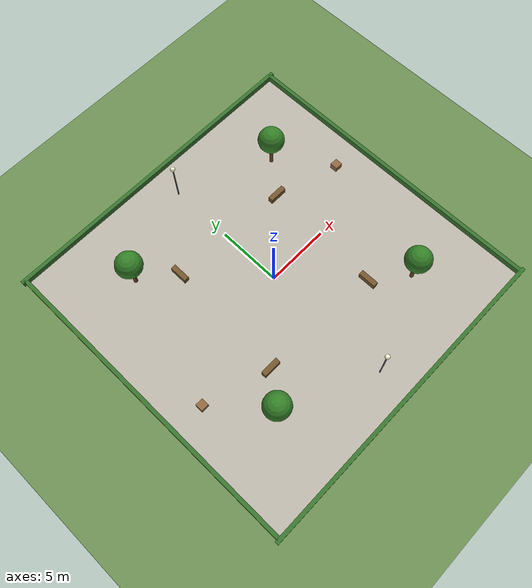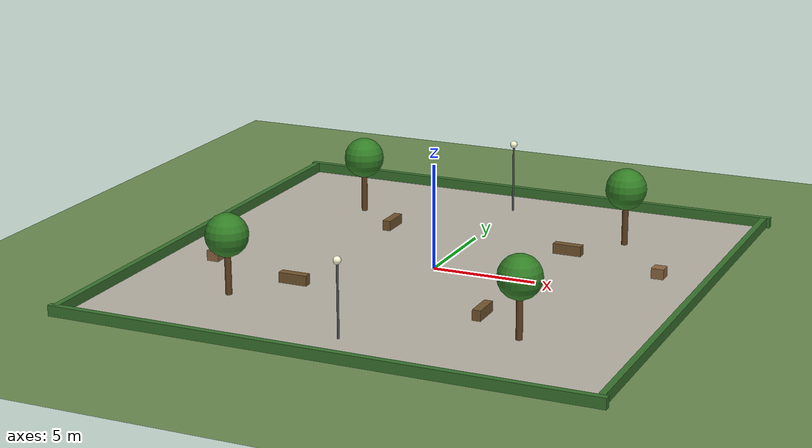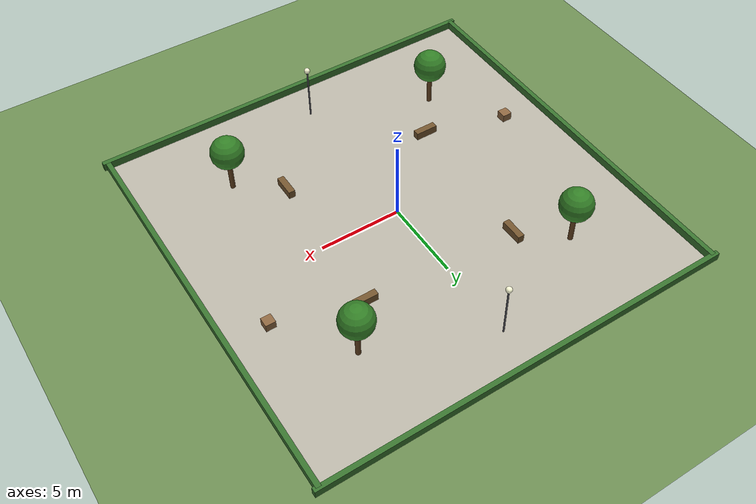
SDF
<?xml version="1.0"?>
<sdf version="1.11">
  <world name="outdoor_courtyard">

    <!-- ── Physics ─────────────────────────────────────────────────────── -->
    <physics name="1ms" type="ignored">
      <max_step_size>0.001</max_step_size>
      <real_time_factor>1.0</real_time_factor>
    </physics>

    <!-- ── System plugins ──────────────────────────────────────────────── -->
    <plugin filename="gz-sim-physics-system"
            name="gz::sim::systems::Physics"/>
    <plugin filename="gz-sim-sensors-system"
            name="gz::sim::systems::Sensors">
      <render_engine>ogre2</render_engine>
    </plugin>
    <plugin filename="gz-sim-scene-broadcaster-system"
            name="gz::sim::systems::SceneBroadcaster"/>
    <plugin filename="gz-sim-user-commands-system"
            name="gz::sim::systems::UserCommands"/>
    <plugin filename="gz-sim-imu-system"
            name="gz::sim::systems::Imu"/>

    <!-- ── Outdoor lighting ─────────────────────────────────────────────── -->
    <!-- Primary sun — high noon angle -->
    <light name="sun" type="directional">
      <cast_shadows>true</cast_shadows>
      <pose>0 0 30 0 0 0</pose>
      <diffuse>1.0 0.97 0.90 1</diffuse>
      <specular>0.4 0.4 0.35 1</specular>
      <direction>-0.3 -0.5 -0.82</direction>
    </light>
    <!-- Sky fill light (simulate scattered sky) -->
    <light name="sky_fill" type="directional">
      <cast_shadows>false</cast_shadows>
      <pose>0 0 20 0 0 0</pose>
      <diffuse>0.45 0.50 0.65 1</diffuse>
      <specular>0.0 0.0 0.0 1</specular>
      <direction>0 0 -1</direction>
    </light>

    <!-- ── Ground ──────────────────────────────────────────────────────── -->
    <model name="ground_plane">
      <static>true</static>
      <link name="link">
        <collision name="collision">
          <geometry><plane><normal>0 0 1</normal><size>100 100</size></plane></geometry>
        </collision>
        <visual name="visual">
          <geometry><plane><normal>0 0 1</normal><size>100 100</size></plane></geometry>
          <material>
            <ambient>0.42 0.55 0.32 1</ambient>
            <diffuse>0.42 0.55 0.32 1</diffuse>
          </material>
        </visual>
      </link>
    </model>

    <!-- Paved courtyard surface (25 × 25 m concrete/paver look) -->
    <model name="courtyard_paving">
      <static>true</static>
      <pose>0 0 0.002 0 0 0</pose>
      <link name="link">
        <visual name="visual">
          <geometry><box><size>25 25 0.001</size></box></geometry>
          <material>
            <ambient>0.72 0.70 0.65 1</ambient>
            <diffuse>0.72 0.70 0.65 1</diffuse>
            <specular>0.05 0.05 0.05 1</specular>
          </material>
        </visual>
      </link>
    </model>

    <model name="hedge_north">
      <static>true</static>
      <pose>0 12.5 0.25 0 0 0</pose>
      <link name="link">
        <collision name="collision">
          <geometry><box><size>25.6 0.3 0.5</size></box></geometry>
        </collision>
        <visual name="visual">
          <geometry><box><size>25.6 0.3 0.5</size></box></geometry>
          <material><ambient>0.22 0.45 0.18 1</ambient><diffuse>0.22 0.45 0.18 1</diffuse></material>
        </visual>
      </link>
    </model>

    <model name="hedge_south">
      <static>true</static>
      <pose>0 -12.5 0.25 0 0 0</pose>
      <link name="link">
        <collision name="collision">
          <geometry><box><size>25.6 0.3 0.5</size></box></geometry>
        </collision>
        <visual name="visual">
          <geometry><box><size>25.6 0.3 0.5</size></box></geometry>
          <material><ambient>0.22 0.45 0.18 1</ambient><diffuse>0.22 0.45 0.18 1</diffuse></material>
        </visual>
      </link>
    </model>

    <model name="hedge_east">
      <static>true</static>
      <pose>12.5 0 0.25 0 0 0</pose>
      <link name="link">
        <collision name="collision">
          <geometry><box><size>0.3 25.0 0.5</size></box></geometry>
        </collision>
        <visual name="visual">
          <geometry><box><size>0.3 25.0 0.5</size></box></geometry>
          <material><ambient>0.22 0.45 0.18 1</ambient><diffuse>0.22 0.45 0.18 1</diffuse></material>
        </visual>
      </link>
    </model>

    <model name="hedge_west">
      <static>true</static>
      <pose>-12.5 0 0.25 0 0 0</pose>
      <link name="link">
        <collision name="collision">
          <geometry><box><size>0.3 25.0 0.5</size></box></geometry>
        </collision>
        <visual name="visual">
          <geometry><box><size>0.3 25.0 0.5</size></box></geometry>
          <material><ambient>0.22 0.45 0.18 1</ambient><diffuse>0.22 0.45 0.18 1</diffuse></material>
        </visual>
      </link>
    </model>

    <!-- NW tree -->
    <model name="tree_nw">
      <static>true</static>
      <pose>-7 7 1.0 0 0 0</pose>
      <link name="link">
        <collision name="collision"><geometry><cylinder><radius>0.15</radius><length>2.0</length></cylinder></geometry></collision>
        <visual name="trunk">
          <geometry><cylinder><radius>0.15</radius><length>2.0</length></cylinder></geometry>
          <material><ambient>0.38 0.25 0.12 1</ambient><diffuse>0.38 0.25 0.12 1</diffuse></material>
        </visual>
      </link>
    </model>
    <model name="tree_nw_foliage">
      <static>true</static>
      <pose>-7 7 2.8 0 0 0</pose>
      <link name="link">
        <collision name="collision"><geometry><sphere><radius>1.0</radius></sphere></geometry></collision>
        <visual name="visual"><geometry><sphere><radius>1.0</radius></sphere></geometry>
          <material><ambient>0.20 0.50 0.15 1</ambient><diffuse>0.20 0.50 0.15 1</diffuse></material></visual>
      </link>
    </model>

    <!-- NE tree -->
    <model name="tree_ne">
      <static>true</static>
      <pose>7 7 1.0 0 0 0</pose>
      <link name="link">
        <collision name="collision"><geometry><cylinder><radius>0.15</radius><length>2.0</length></cylinder></geometry></collision>
        <visual name="trunk">
          <geometry><cylinder><radius>0.15</radius><length>2.0</length></cylinder></geometry>
          <material><ambient>0.38 0.25 0.12 1</ambient><diffuse>0.38 0.25 0.12 1</diffuse></material>
        </visual>
      </link>
    </model>
    <model name="tree_ne_foliage">
      <static>true</static>
      <pose>7 7 2.8 0 0 0</pose>
      <link name="link">
        <collision name="collision"><geometry><sphere><radius>1.0</radius></sphere></geometry></collision>
        <visual name="visual"><geometry><sphere><radius>1.0</radius></sphere></geometry>
          <material><ambient>0.20 0.50 0.15 1</ambient><diffuse>0.20 0.50 0.15 1</diffuse></material></visual>
      </link>
    </model>

    <!-- SW tree -->
    <model name="tree_sw">
      <static>true</static>
      <pose>-7 -7 1.0 0 0 0</pose>
      <link name="link">
        <collision name="collision"><geometry><cylinder><radius>0.15</radius><length>2.0</length></cylinder></geometry></collision>
        <visual name="trunk">
          <geometry><cylinder><radius>0.15</radius><length>2.0</length></cylinder></geometry>
          <material><ambient>0.38 0.25 0.12 1</ambient><diffuse>0.38 0.25 0.12 1</diffuse></material>
        </visual>
      </link>
    </model>
    <model name="tree_sw_foliage">
      <static>true</static>
      <pose>-7 -7 2.8 0 0 0</pose>
      <link name="link">
        <collision name="collision"><geometry><sphere><radius>1.0</radius></sphere></geometry></collision>
        <visual name="visual"><geometry><sphere><radius>1.0</radius></sphere></geometry>
          <material><ambient>0.20 0.50 0.15 1</ambient><diffuse>0.20 0.50 0.15 1</diffuse></material></visual>
      </link>
    </model>

    <!-- SE tree -->
    <model name="tree_se">
      <static>true</static>
      <pose>7 -7 1.0 0 0 0</pose>
      <link name="link">
        <collision name="collision"><geometry><cylinder><radius>0.15</radius><length>2.0</length></cylinder></geometry></collision>
        <visual name="trunk">
          <geometry><cylinder><radius>0.15</radius><length>2.0</length></cylinder></geometry>
          <material><ambient>0.38 0.25 0.12 1</ambient><diffuse>0.38 0.25 0.12 1</diffuse></material>
        </visual>
      </link>
    </model>
    <model name="tree_se_foliage">
      <static>true</static>
      <pose>7 -7 2.8 0 0 0</pose>
      <link name="link">
        <collision name="collision"><geometry><sphere><radius>1.0</radius></sphere></geometry></collision>
        <visual name="visual"><geometry><sphere><radius>1.0</radius></sphere></geometry>
          <material><ambient>0.20 0.50 0.15 1</ambient><diffuse>0.20 0.50 0.15 1</diffuse></material></visual>
      </link>
    </model>

    <!-- North path bench (east side) -->
    <model name="bench_north_e">
      <static>true</static>
      <pose>5 4.5 0.25 0 0 0</pose>
      <link name="link">
        <collision name="collision"><geometry><box><size>1.4 0.4 0.5</size></box></geometry></collision>
        <visual name="visual"><geometry><box><size>1.4 0.4 0.5</size></box></geometry>
          <material><ambient>0.45 0.33 0.18 1</ambient><diffuse>0.45 0.33 0.18 1</diffuse></material></visual>
      </link>
    </model>
    <!-- South path bench (west side) -->
    <model name="bench_south_w">
      <static>true</static>
      <pose>-5 -4.5 0.25 0 0 0</pose>
      <link name="link">
        <collision name="collision"><geometry><box><size>1.4 0.4 0.5</size></box></geometry></collision>
        <visual name="visual"><geometry><box><size>1.4 0.4 0.5</size></box></geometry>
          <material><ambient>0.45 0.33 0.18 1</ambient><diffuse>0.45 0.33 0.18 1</diffuse></material></visual>
      </link>
    </model>
    <!-- East path bench (north side) -->
    <model name="bench_east_n">
      <static>true</static>
      <pose>4.5 -5 0.25 0 0 1.5708</pose>
      <link name="link">
        <collision name="collision"><geometry><box><size>1.4 0.4 0.5</size></box></geometry></collision>
        <visual name="visual"><geometry><box><size>1.4 0.4 0.5</size></box></geometry>
          <material><ambient>0.45 0.33 0.18 1</ambient><diffuse>0.45 0.33 0.18 1</diffuse></material></visual>
      </link>
    </model>
    <!-- West path bench (south side) -->
    <model name="bench_west_s">
      <static>true</static>
      <pose>-4.5 5 0.25 0 0 1.5708</pose>
      <link name="link">
        <collision name="collision"><geometry><box><size>1.4 0.4 0.5</size></box></geometry></collision>
        <visual name="visual"><geometry><box><size>1.4 0.4 0.5</size></box></geometry>
          <material><ambient>0.45 0.33 0.18 1</ambient><diffuse>0.45 0.33 0.18 1</diffuse></material></visual>
      </link>
    </model>

    <!-- ════════════════════════════════════════════════════════════════════
         PLANTERS — 2 decorative planter boxes
         ════════════════════════════════════════════════════════════════════ -->

    <model name="planter_ne">
      <static>true</static>
      <pose>10 3 0.25 0 0 0</pose>
      <link name="link">
        <collision name="collision"><geometry><box><size>0.6 0.6 0.5</size></box></geometry></collision>
        <visual name="visual"><geometry><box><size>0.6 0.6 0.5</size></box></geometry>
          <material><ambient>0.55 0.40 0.25 1</ambient><diffuse>0.55 0.40 0.25 1</diffuse></material></visual>
      </link>
    </model>
    <model name="planter_sw">
      <static>true</static>
      <pose>-10 -3 0.25 0 0 0</pose>
      <link name="link">
        <collision name="collision"><geometry><box><size>0.6 0.6 0.5</size></box></geometry></collision>
        <visual name="visual"><geometry><box><size>0.6 0.6 0.5</size></box></geometry>
          <material><ambient>0.55 0.40 0.25 1</ambient><diffuse>0.55 0.40 0.25 1</diffuse></material></visual>
      </link>
    </model>

    <!-- Lamp post north -->
    <model name="lamp_north">
      <static>true</static>
      <pose>0 10 1.75 0 0 0</pose>
      <link name="link">
        <collision name="collision"><geometry><cylinder><radius>0.05</radius><length>3.5</length></cylinder></geometry></collision>
        <visual name="pole">
          <geometry><cylinder><radius>0.05</radius><length>3.5</length></cylinder></geometry>
          <material><ambient>0.30 0.30 0.32 1</ambient><diffuse>0.30 0.30 0.32 1</diffuse></material>
        </visual>
        <visual name="globe">
          <pose>0 0 1.75 0 0 0</pose>
          <geometry><sphere><radius>0.18</radius></sphere></geometry>
          <material><ambient>1.0 1.0 0.85 1</ambient><diffuse>1.0 1.0 0.85 1</diffuse>
            <emissive>0.8 0.8 0.6 1</emissive></material>
        </visual>
      </link>
    </model>

    <!-- Lamp post south -->
    <model name="lamp_south">
      <static>true</static>
      <pose>0 -10 1.75 0 0 0</pose>
      <link name="link">
        <collision name="collision"><geometry><cylinder><radius>0.05</radius><length>3.5</length></cylinder></geometry></collision>
        <visual name="pole">
          <geometry><cylinder><radius>0.05</radius><length>3.5</length></cylinder></geometry>
          <material><ambient>0.30 0.30 0.32 1</ambient><diffuse>0.30 0.30 0.32 1</diffuse></material>
        </visual>
        <visual name="globe">
          <pose>0 0 1.75 0 0 0</pose>
          <geometry><sphere><radius>0.18</radius></sphere></geometry>
          <material><ambient>1.0 1.0 0.85 1</ambient><diffuse>1.0 1.0 0.85 1</diffuse>
            <emissive>0.8 0.8 0.6 1</emissive></material>
        </visual>
      </link>
    </model>

  </world>
</sdf>
